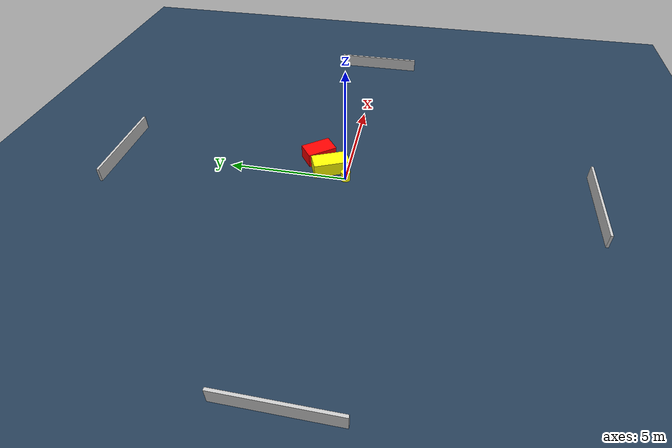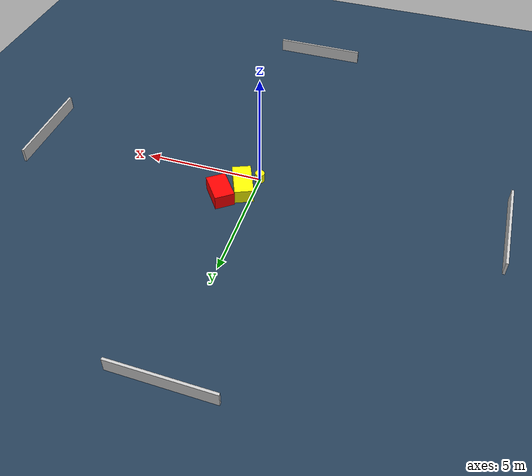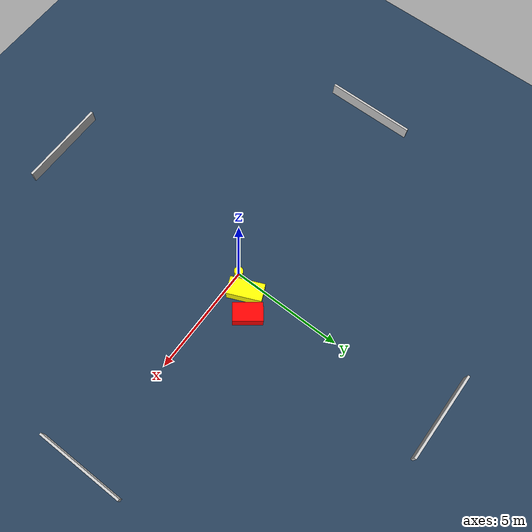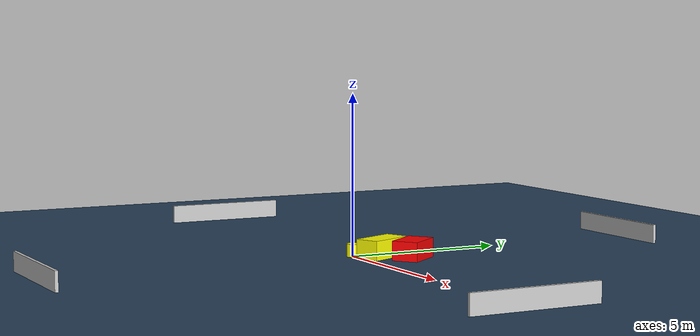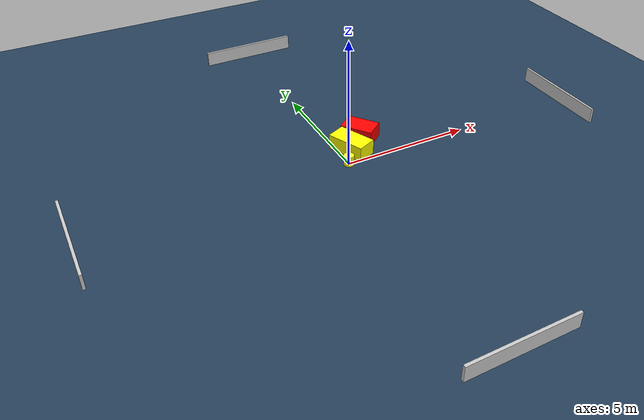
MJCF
<?xml version="1.0" ?>
<mujoco model="generated_environment">
  <option timestep="0.01" integrator="RK4" cone="elliptic"/>
  <default>
    <geom density="1"/>
  </default>
  <asset>
    <texture builtin="gradient" height="3072" name="skybox" rgb1="0.3 0.5 0.7" rgb2="0 0 0" type="skybox" width="512"/>
    <texture builtin="checker" height="300" name="groundplane" rgb1="0.2 0.3 0.4" rgb2="0.1 0.2 0.3" type="2d" width="300"/>
    <material name="groundplane" reflectance="0.2" texrepeat="5 5" texture="groundplane"/>
  </asset>
  <worldbody>
    <light dir="0 0 -1" directional="true" pos="0 0 1.5"/>
    <geom condim="3" friction="0.5 0.005 0.001" material="groundplane" name="floor" pos="0 0 0" size="0 0 0.05" type="plane"/>
    <body name="walls">
      <geom name="wall_1" condim="4" pos="-10.0 0.0 0.3" rgba="0.800000011920929 0.800000011920929 0.800000011920929 1.0" size="0.05 2.0 0.3" type="box"/>
      <geom name="wall_2" condim="4" pos="10.0 0.0 0.3" rgba="0.800000011920929 0.800000011920929 0.800000011920929 1.0" size="0.05 2.0 0.3" type="box"/>
      <geom name="wall_3" condim="4" pos="0.0 -10.0 0.3" rgba="0.800000011920929 0.800000011920929 0.800000011920929 1.0" size="2.0 0.05 0.3" type="box"/>
      <geom name="wall_4" condim="4" pos="0.0 10.0 0.3" rgba="0.800000011920929 0.800000011920929 0.800000011920929 1.0" size="2.0 0.05 0.3" type="box"/>
    </body>
    <body name="robot">
      <joint name="joint_x" type="slide" pos="0 0 0" axis="1 0 0"/>
      <joint name="joint_y" type="slide" pos="0 0 0" axis="0 1 0"/>
      <geom name="robot" type="cylinder" pos="0.0 0.0 0.2" size="0.2 0.2 0.0" mass="5.0" friction="1.0 0.005 0.0001" condim="4" rgba="1.0 1.0 0.0 1.0"/>
    </body>
    <body name="obstacle_1_movable">
      <geom name="obstacle_1_movable" condim="4" pos="0.49273595408495285 0.747856570146389 0.3" euler="0 0 23.562989343020952" friction="0.0 0.005 0.001" rgba="1.0 1.0 0.0 1.0" size="0.3884832493306985 0.7588514580408958 0.3" type="box" mass="0.1"/>
      <joint type="free"/>
    </body>
    <body name="obstacle_2_static">
      <geom name="obstacle_2_static" condim="4" pos="1.229403772280567 1.4129141188588406 0.3" euler="0 0 37.37811107140478" friction="0.0 0.005 0.001" rgba="1.0 0.0 0.0 1.0" size="0.40902676975568203 0.6412889136426299 0.3" type="box"/>
    </body>
  </worldbody>
  <actuator>
    <motor name="actuator_x" joint="joint_x" gear="1" ctrlrange="-1 1"/>
    <motor name="actuator_y" joint="joint_y" gear="1" ctrlrange="-1 1"/>
  </actuator>
</mujoco>
